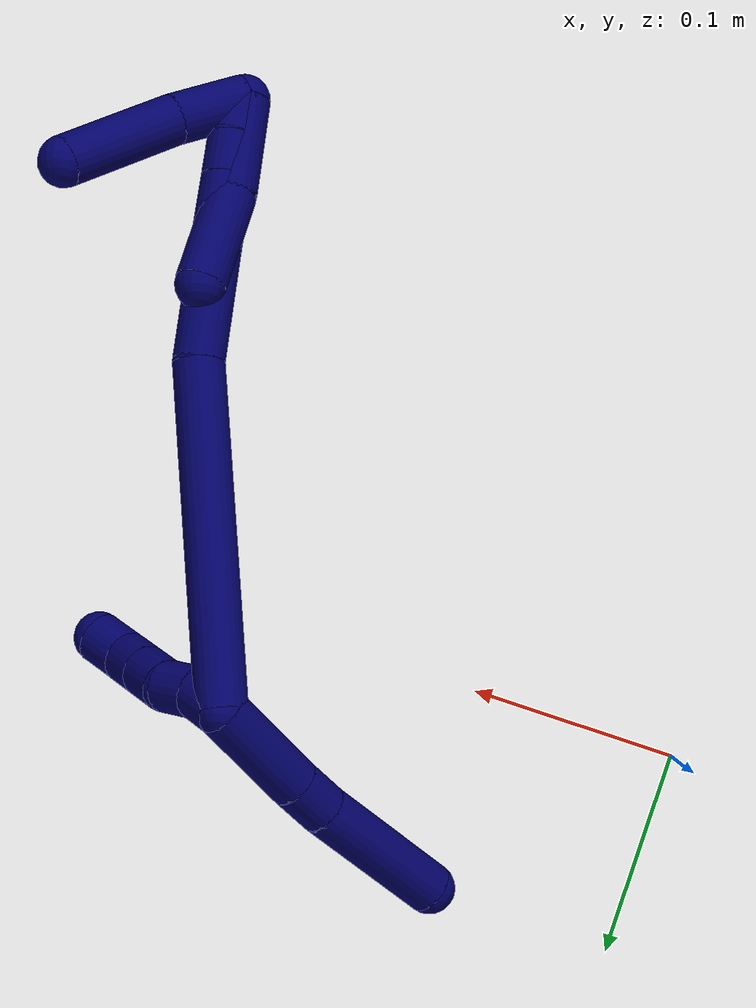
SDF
<sdf version="1.7">
 <world name="default">
  <model name="7">
   <static>0</static>
   <link name="7">
    <collision name="collision-cylinder-e_1_2_8">
     <pose>-0.016369 0.017653 -0.012696 -2.19429 -0.645306 1.15595</pose>
     <geometry><cylinder><radius>0.0125</radius><length>0.054434</length></cylinder></geometry>
     <surface>
      <friction><ode><mu>1.16</mu><mu2>1.16</mu2><slip1>0</slip1><slip2>0</slip2></ode></friction>
      <contact><ode><kp>1e+06</kp><kd>1</kd><max_vel>0</max_vel><min_depth>0.001</min_depth></ode></contact>
     </surface>
    </collision>
    <visual name="visual-cylinder-e_1_2_8">
     <pose>-0.016369 0.017653 -0.012696 -2.19429 -0.645306 1.15595</pose>
     <geometry><cylinder><radius>0.0125</radius><length>0.054434</length></cylinder></geometry>
     <material><ambient>0.003922 0 0.403922 1</ambient></material>
    </visual>
    <collision name="collision-cylinder-e_2_8_9">
     <pose>-0.039183 0.042501 -0.029938 -2.13429 -0.648087 1.09479</pose>
     <geometry><cylinder><radius>0.0125</radius><length>0.021351</length></cylinder></geometry>
     <surface>
      <friction><ode><mu>1.16</mu><mu2>1.16</mu2><slip1>0</slip1><slip2>0</slip2></ode></friction>
      <contact><ode><kp>1e+06</kp><kd>1</kd><max_vel>0</max_vel><min_depth>0.001</min_depth></ode></contact>
     </surface>
    </collision>
    <visual name="visual-cylinder-e_2_8_9">
     <pose>-0.039183 0.042501 -0.029938 -2.13429 -0.648087 1.09479</pose>
     <geometry><cylinder><radius>0.0125</radius><length>0.021351</length></cylinder></geometry>
     <material><ambient>0.003922 0 0.403922 1</ambient></material>
    </visual>
    <collision name="collision-cylinder-e_3_9_6">
     <pose>-0.067166 0.076568 -0.048301 -2.04574 -0.619261 0.965701</pose>
     <geometry><cylinder><radius>0.0125</radius><length>0.074215</length></cylinder></geometry>
     <surface>
      <friction><ode><mu>1.16</mu><mu2>1.16</mu2><slip1>0</slip1><slip2>0</slip2></ode></friction>
      <contact><ode><kp>1e+06</kp><kd>1</kd><max_vel>0</max_vel><min_depth>0.001</min_depth></ode></contact>
     </surface>
    </collision>
    <visual name="visual-cylinder-e_3_9_6">
     <pose>-0.067166 0.076568 -0.048301 -2.04574 -0.619261 0.965701</pose>
     <geometry><cylinder><radius>0.0125</radius><length>0.074215</length></cylinder></geometry>
     <material><ambient>0.003922 0 0.403922 1</ambient></material>
    </visual>
    <collision name="collision-cylinder-e_1_2_10">
     <pose>-0.006025 -0.006128 0.005114 0.875339 -0.646643 -0.311059</pose>
     <geometry><cylinder><radius>0.0125</radius><length>0.02</length></cylinder></geometry>
     <surface>
      <friction><ode><mu>1.16</mu><mu2>1.16</mu2><slip1>0</slip1><slip2>0</slip2></ode></friction>
      <contact><ode><kp>1e+06</kp><kd>1</kd><max_vel>0</max_vel><min_depth>0.001</min_depth></ode></contact>
     </surface>
    </collision>
    <visual name="visual-cylinder-e_1_2_10">
     <pose>-0.006025 -0.006128 0.005114 0.875339 -0.646643 -0.311059</pose>
     <geometry><cylinder><radius>0.0125</radius><length>0.02</length></cylinder></geometry>
     <material><ambient>0.003922 0 0.403922 1</ambient></material>
    </visual>
    <collision name="collision-cylinder-e_2_10_11">
     <pose>-0.018049 -0.019897 0.012599 1.26986 -0.643328 -0.481467</pose>
     <geometry><cylinder><radius>0.0125</radius><length>0.02</length></cylinder></geometry>
     <surface>
      <friction><ode><mu>1.16</mu><mu2>1.16</mu2><slip1>0</slip1><slip2>0</slip2></ode></friction>
      <contact><ode><kp>1e+06</kp><kd>1</kd><max_vel>0</max_vel><min_depth>0.001</min_depth></ode></contact>
     </surface>
    </collision>
    <visual name="visual-cylinder-e_2_10_11">
     <pose>-0.018049 -0.019897 0.012599 1.26986 -0.643328 -0.481467</pose>
     <geometry><cylinder><radius>0.0125</radius><length>0.02</length></cylinder></geometry>
     <material><ambient>0.003922 0 0.403922 1</ambient></material>
    </visual>
    <collision name="collision-cylinder-e_3_11_12">
     <pose>-0.031091 -0.032876 0.01965 0.851017 -0.781515 -0.36913</pose>
     <geometry><cylinder><radius>0.0125</radius><length>0.02</length></cylinder></geometry>
     <surface>
      <friction><ode><mu>1.16</mu><mu2>1.16</mu2><slip1>0</slip1><slip2>0</slip2></ode></friction>
      <contact><ode><kp>1e+06</kp><kd>1</kd><max_vel>0</max_vel><min_depth>0.001</min_depth></ode></contact>
     </surface>
    </collision>
    <visual name="visual-cylinder-e_3_11_12">
     <pose>-0.031091 -0.032876 0.01965 0.851017 -0.781515 -0.36913</pose>
     <geometry><cylinder><radius>0.0125</radius><length>0.02</length></cylinder></geometry>
     <material><ambient>0.003922 0 0.403922 1</ambient></material>
    </visual>
    <collision name="collision-cylinder-e_4_12_13">
     <pose>-0.045185 -0.043546 0.029006 0.850841 -0.782416 -0.369507</pose>
     <geometry><cylinder><radius>0.0125</radius><length>0.02</length></cylinder></geometry>
     <surface>
      <friction><ode><mu>1.16</mu><mu2>1.16</mu2><slip1>0</slip1><slip2>0</slip2></ode></friction>
      <contact><ode><kp>1e+06</kp><kd>1</kd><max_vel>0</max_vel><min_depth>0.001</min_depth></ode></contact>
     </surface>
    </collision>
    <visual name="visual-cylinder-e_4_12_13">
     <pose>-0.045185 -0.043546 0.029006 0.850841 -0.782416 -0.369507</pose>
     <geometry><cylinder><radius>0.0125</radius><length>0.02</length></cylinder></geometry>
     <material><ambient>0.003922 0 0.403922 1</ambient></material>
    </visual>
    <collision name="collision-cylinder-e_5_13_5">
     <pose>-0.056622 -0.05609 0.039043 0.931607 -0.45424 -0.231317</pose>
     <geometry><cylinder><radius>0.0125</radius><length>0.02</length></cylinder></geometry>
     <surface>
      <friction><ode><mu>1.16</mu><mu2>1.16</mu2><slip1>0</slip1><slip2>0</slip2></ode></friction>
      <contact><ode><kp>1e+06</kp><kd>1</kd><max_vel>0</max_vel><min_depth>0.001</min_depth></ode></contact>
     </surface>
    </collision>
    <visual name="visual-cylinder-e_5_13_5">
     <pose>-0.056622 -0.05609 0.039043 0.931607 -0.45424 -0.231317</pose>
     <geometry><cylinder><radius>0.0125</radius><length>0.02</length></cylinder></geometry>
     <material><ambient>0.003922 0 0.403922 1</ambient></material>
    </visual>
    <collision name="collision-cylinder-e_1_2_14">
     <pose>0.004221 -0.011401 0.082156 0.137894 0.050842 0.003512</pose>
     <geometry><cylinder><radius>0.0125</radius><length>0.1661</length></cylinder></geometry>
     <surface>
      <friction><ode><mu>1.16</mu><mu2>1.16</mu2><slip1>0</slip1><slip2>0</slip2></ode></friction>
      <contact><ode><kp>1e+06</kp><kd>1</kd><max_vel>0</max_vel><min_depth>0.001</min_depth></ode></contact>
     </surface>
    </collision>
    <visual name="visual-cylinder-e_1_2_14">
     <pose>0.004221 -0.011401 0.082156 0.137894 0.050842 0.003512</pose>
     <geometry><cylinder><radius>0.0125</radius><length>0.1661</length></cylinder></geometry>
     <material><ambient>0.003922 0 0.403922 1</ambient></material>
    </visual>
    <collision name="collision-cylinder-e_2_14_15">
     <pose>0.009723 -0.020969 0.191777 -0.066662 0.046546 -0.001552</pose>
     <geometry><cylinder><radius>0.0125</radius><length>0.055114</length></cylinder></geometry>
     <surface>
      <friction><ode><mu>1.16</mu><mu2>1.16</mu2><slip1>0</slip1><slip2>0</slip2></ode></friction>
      <contact><ode><kp>1e+06</kp><kd>1</kd><max_vel>0</max_vel><min_depth>0.001</min_depth></ode></contact>
     </surface>
    </collision>
    <visual name="visual-cylinder-e_2_14_15">
     <pose>0.009723 -0.020969 0.191777 -0.066662 0.046546 -0.001552</pose>
     <geometry><cylinder><radius>0.0125</radius><length>0.055114</length></cylinder></geometry>
     <material><ambient>0.003922 0 0.403922 1</ambient></material>
    </visual>
    <collision name="collision-cylinder-e_3_15_16">
     <pose>0.011246 -0.017657 0.237657 -0.080113 0.013022 -0.000522</pose>
     <geometry><cylinder><radius>0.0125</radius><length>0.036949</length></cylinder></geometry>
     <surface>
      <friction><ode><mu>1.16</mu><mu2>1.16</mu2><slip1>0</slip1><slip2>0</slip2></ode></friction>
      <contact><ode><kp>1e+06</kp><kd>1</kd><max_vel>0</max_vel><min_depth>0.001</min_depth></ode></contact>
     </surface>
    </collision>
    <visual name="visual-cylinder-e_3_15_16">
     <pose>0.011246 -0.017657 0.237657 -0.080113 0.013022 -0.000522</pose>
     <geometry><cylinder><radius>0.0125</radius><length>0.036949</length></cylinder></geometry>
     <material><ambient>0.003922 0 0.403922 1</ambient></material>
    </visual>
    <collision name="collision-cylinder-e_4_16_17">
     <pose>0.011633 -0.015386 0.266647 -0.074782 0.013823 -0.000517</pose>
     <geometry><cylinder><radius>0.0125</radius><length>0.021215</length></cylinder></geometry>
     <surface>
      <friction><ode><mu>1.16</mu><mu2>1.16</mu2><slip1>0</slip1><slip2>0</slip2></ode></friction>
      <contact><ode><kp>1e+06</kp><kd>1</kd><max_vel>0</max_vel><min_depth>0.001</min_depth></ode></contact>
     </surface>
    </collision>
    <visual name="visual-cylinder-e_4_16_17">
     <pose>0.011633 -0.015386 0.266647 -0.074782 0.013823 -0.000517</pose>
     <geometry><cylinder><radius>0.0125</radius><length>0.021215</length></cylinder></geometry>
     <material><ambient>0.003922 0 0.403922 1</ambient></material>
    </visual>
    <collision name="collision-cylinder-e_5_17_1">
     <pose>0.011019 -0.012635 0.287319 -0.191589 -0.073858 0.0071</pose>
     <geometry><cylinder><radius>0.0125</radius><length>0.020622</length></cylinder></geometry>
     <surface>
      <friction><ode><mu>1.16</mu><mu2>1.16</mu2><slip1>0</slip1><slip2>0</slip2></ode></friction>
      <contact><ode><kp>1e+06</kp><kd>1</kd><max_vel>0</max_vel><min_depth>0.001</min_depth></ode></contact>
     </surface>
    </collision>
    <visual name="visual-cylinder-e_5_17_1">
     <pose>0.011019 -0.012635 0.287319 -0.191589 -0.073858 0.0071</pose>
     <geometry><cylinder><radius>0.0125</radius><length>0.020622</length></cylinder></geometry>
     <material><ambient>0.003922 0 0.403922 1</ambient></material>
    </visual>
    <collision name="collision-cylinder-e_1_1_18">
     <pose>0.010888 -0.012168 0.272761 3.08118 0.025502 0.798702</pose>
     <geometry><cylinder><radius>0.0125</radius><length>0.04941</length></cylinder></geometry>
     <surface>
      <friction><ode><mu>1.16</mu><mu2>1.16</mu2><slip1>0</slip1><slip2>0</slip2></ode></friction>
      <contact><ode><kp>1e+06</kp><kd>1</kd><max_vel>0</max_vel><min_depth>0.001</min_depth></ode></contact>
     </surface>
    </collision>
    <visual name="visual-cylinder-e_1_1_18">
     <pose>0.010888 -0.012168 0.272761 3.08118 0.025502 0.798702</pose>
     <geometry><cylinder><radius>0.0125</radius><length>0.04941</length></cylinder></geometry>
     <material><ambient>0.003922 0 0.403922 1</ambient></material>
    </visual>
    <collision name="collision-cylinder-e_2_18_4">
     <pose>0.015243 -0.018943 0.223654 2.92879 0.147787 1.21219</pose>
     <geometry><cylinder><radius>0.0125</radius><length>0.05059</length></cylinder></geometry>
     <surface>
      <friction><ode><mu>1.16</mu><mu2>1.16</mu2><slip1>0</slip1><slip2>0</slip2></ode></friction>
      <contact><ode><kp>1e+06</kp><kd>1</kd><max_vel>0</max_vel><min_depth>0.001</min_depth></ode></contact>
     </surface>
    </collision>
    <visual name="visual-cylinder-e_2_18_4">
     <pose>0.015243 -0.018943 0.223654 2.92879 0.147787 1.21219</pose>
     <geometry><cylinder><radius>0.0125</radius><length>0.05059</length></cylinder></geometry>
     <material><ambient>0.003922 0 0.403922 1</ambient></material>
    </visual>
    <collision name="collision-cylinder-e_1_1_19">
     <pose>0.014925 -0.027047 0.28915 2.03824 0.249208 0.401568</pose>
     <geometry><cylinder><radius>0.0125</radius><length>0.037844</length></cylinder></geometry>
     <surface>
      <friction><ode><mu>1.16</mu><mu2>1.16</mu2><slip1>0</slip1><slip2>0</slip2></ode></friction>
      <contact><ode><kp>1e+06</kp><kd>1</kd><max_vel>0</max_vel><min_depth>0.001</min_depth></ode></contact>
     </surface>
    </collision>
    <visual name="visual-cylinder-e_1_1_19">
     <pose>0.014925 -0.027047 0.28915 2.03824 0.249208 0.401568</pose>
     <geometry><cylinder><radius>0.0125</radius><length>0.037844</length></cylinder></geometry>
     <material><ambient>0.003922 0 0.403922 1</ambient></material>
    </visual>
    <collision name="collision-cylinder-e_2_19_3">
     <pose>0.030093 -0.067408 0.264153 2.17989 0.344664 0.644058</pose>
     <geometry><cylinder><radius>0.0125</radius><length>0.062156</length></cylinder></geometry>
     <surface>
      <friction><ode><mu>1.16</mu><mu2>1.16</mu2><slip1>0</slip1><slip2>0</slip2></ode></friction>
      <contact><ode><kp>1e+06</kp><kd>1</kd><max_vel>0</max_vel><min_depth>0.001</min_depth></ode></contact>
     </surface>
    </collision>
    <visual name="visual-cylinder-e_2_19_3">
     <pose>0.030093 -0.067408 0.264153 2.17989 0.344664 0.644058</pose>
     <geometry><cylinder><radius>0.0125</radius><length>0.062156</length></cylinder></geometry>
     <material><ambient>0.003922 0 0.403922 1</ambient></material>
    </visual>
    <collision name="collision-sphere-3">
     <pose>0.040593 -0.091398 0.247418 0 -0 0</pose>
     <geometry><sphere><radius>0.0125</radius></sphere></geometry>
     <surface>
      <friction><ode><mu>1.16</mu><mu2>1.16</mu2><slip1>0</slip1><slip2>0</slip2></ode></friction>
      <contact><ode><kp>1e+06</kp><kd>1</kd><max_vel>0</max_vel><min_depth>0.001</min_depth></ode></contact>
     </surface>
    </collision>
    <visual name="visual-sphere-3">
     <pose>0.040593 -0.091398 0.247418 0 -0 0</pose>
     <geometry><sphere><radius>0.0125</radius></sphere></geometry>
     <material><ambient>0.003922 0 0.403922 1</ambient></material>
    </visual>
    <collision name="collision-sphere-19">
     <pose>0.019592 -0.043418 0.280887 0 -0 0</pose>
     <geometry><sphere><radius>0.0125</radius></sphere></geometry>
     <surface>
      <friction><ode><mu>1.16</mu><mu2>1.16</mu2><slip1>0</slip1><slip2>0</slip2></ode></friction>
      <contact><ode><kp>1e+06</kp><kd>1</kd><max_vel>0</max_vel><min_depth>0.001</min_depth></ode></contact>
     </surface>
    </collision>
    <visual name="visual-sphere-19">
     <pose>0.019592 -0.043418 0.280887 0 -0 0</pose>
     <geometry><sphere><radius>0.0125</radius></sphere></geometry>
     <material><ambient>0.003922 0 0.403922 1</ambient></material>
    </visual>
    <collision name="collision-sphere-11">
     <pose>-0.024047 -0.027538 0.014971 0 -0 0</pose>
     <geometry><sphere><radius>0.0125</radius></sphere></geometry>
     <surface>
      <friction><ode><mu>1.16</mu><mu2>1.16</mu2><slip1>0</slip1><slip2>0</slip2></ode></friction>
      <contact><ode><kp>1e+06</kp><kd>1</kd><max_vel>0</max_vel><min_depth>0.001</min_depth></ode></contact>
     </surface>
    </collision>
    <visual name="visual-sphere-11">
     <pose>-0.024047 -0.027538 0.014971 0 -0 0</pose>
     <geometry><sphere><radius>0.0125</radius></sphere></geometry>
     <material><ambient>0.003922 0 0.403922 1</ambient></material>
    </visual>
    <collision name="collision-sphere-10">
     <pose>-0.01205 -0.012255 0.010228 0 -0 0</pose>
     <geometry><sphere><radius>0.0125</radius></sphere></geometry>
     <surface>
      <friction><ode><mu>1.16</mu><mu2>1.16</mu2><slip1>0</slip1><slip2>0</slip2></ode></friction>
      <contact><ode><kp>1e+06</kp><kd>1</kd><max_vel>0</max_vel><min_depth>0.001</min_depth></ode></contact>
     </surface>
    </collision>
    <visual name="visual-sphere-10">
     <pose>-0.01205 -0.012255 0.010228 0 -0 0</pose>
     <geometry><sphere><radius>0.0125</radius></sphere></geometry>
     <material><ambient>0.003922 0 0.403922 1</ambient></material>
    </visual>
    <collision name="collision-sphere-6">
     <pose>-0.088705 0.103441 -0.062119 0 -0 0</pose>
     <geometry><sphere><radius>0.0125</radius></sphere></geometry>
     <surface>
      <friction><ode><mu>1.16</mu><mu2>1.16</mu2><slip1>0</slip1><slip2>0</slip2></ode></friction>
      <contact><ode><kp>1e+06</kp><kd>1</kd><max_vel>0</max_vel><min_depth>0.001</min_depth></ode></contact>
     </surface>
    </collision>
    <visual name="visual-sphere-6">
     <pose>-0.088705 0.103441 -0.062119 0 -0 0</pose>
     <geometry><sphere><radius>0.0125</radius></sphere></geometry>
     <material><ambient>0.003922 0 0.403922 1</ambient></material>
    </visual>
    <collision name="collision-sphere-9">
     <pose>-0.045628 0.049696 -0.034484 0 -0 0</pose>
     <geometry><sphere><radius>0.0125</radius></sphere></geometry>
     <surface>
      <friction><ode><mu>1.16</mu><mu2>1.16</mu2><slip1>0</slip1><slip2>0</slip2></ode></friction>
      <contact><ode><kp>1e+06</kp><kd>1</kd><max_vel>0</max_vel><min_depth>0.001</min_depth></ode></contact>
     </surface>
    </collision>
    <visual name="visual-sphere-9">
     <pose>-0.045628 0.049696 -0.034484 0 -0 0</pose>
     <geometry><sphere><radius>0.0125</radius></sphere></geometry>
     <material><ambient>0.003922 0 0.403922 1</ambient></material>
    </visual>
    <collision name="collision-sphere-2">
     <geometry><sphere><radius>0.0125</radius></sphere></geometry>
     <surface>
      <friction><ode><mu>1.16</mu><mu2>1.16</mu2><slip1>0</slip1><slip2>0</slip2></ode></friction>
      <contact><ode><kp>1e+06</kp><kd>1</kd><max_vel>0</max_vel><min_depth>0.001</min_depth></ode></contact>
     </surface>
    </collision>
    <visual name="visual-sphere-2">
     <geometry><sphere><radius>0.0125</radius></sphere></geometry>
     <material><ambient>0.003922 0 0.403922 1</ambient></material>
    </visual>
    <collision name="collision-sphere-8">
     <pose>-0.032739 0.035306 -0.025391 0 -0 0</pose>
     <geometry><sphere><radius>0.0125</radius></sphere></geometry>
     <surface>
      <friction><ode><mu>1.16</mu><mu2>1.16</mu2><slip1>0</slip1><slip2>0</slip2></ode></friction>
      <contact><ode><kp>1e+06</kp><kd>1</kd><max_vel>0</max_vel><min_depth>0.001</min_depth></ode></contact>
     </surface>
    </collision>
    <visual name="visual-sphere-8">
     <pose>-0.032739 0.035306 -0.025391 0 -0 0</pose>
     <geometry><sphere><radius>0.0125</radius></sphere></geometry>
     <material><ambient>0.003922 0 0.403922 1</ambient></material>
    </visual>
    <collision name="collision-sphere-12">
     <pose>-0.038135 -0.038214 0.02433 0 -0 0</pose>
     <geometry><sphere><radius>0.0125</radius></sphere></geometry>
     <surface>
      <friction><ode><mu>1.16</mu><mu2>1.16</mu2><slip1>0</slip1><slip2>0</slip2></ode></friction>
      <contact><ode><kp>1e+06</kp><kd>1</kd><max_vel>0</max_vel><min_depth>0.001</min_depth></ode></contact>
     </surface>
    </collision>
    <visual name="visual-sphere-12">
     <pose>-0.038135 -0.038214 0.02433 0 -0 0</pose>
     <geometry><sphere><radius>0.0125</radius></sphere></geometry>
     <material><ambient>0.003922 0 0.403922 1</ambient></material>
    </visual>
    <collision name="collision-sphere-13">
     <pose>-0.052234 -0.048878 0.033682 0 -0 0</pose>
     <geometry><sphere><radius>0.0125</radius></sphere></geometry>
     <surface>
      <friction><ode><mu>1.16</mu><mu2>1.16</mu2><slip1>0</slip1><slip2>0</slip2></ode></friction>
      <contact><ode><kp>1e+06</kp><kd>1</kd><max_vel>0</max_vel><min_depth>0.001</min_depth></ode></contact>
     </surface>
    </collision>
    <visual name="visual-sphere-13">
     <pose>-0.052234 -0.048878 0.033682 0 -0 0</pose>
     <geometry><sphere><radius>0.0125</radius></sphere></geometry>
     <material><ambient>0.003922 0 0.403922 1</ambient></material>
    </visual>
    <collision name="collision-sphere-5">
     <pose>-0.06101 -0.063302 0.044403 0 -0 0</pose>
     <geometry><sphere><radius>0.0125</radius></sphere></geometry>
     <surface>
      <friction><ode><mu>1.16</mu><mu2>1.16</mu2><slip1>0</slip1><slip2>0</slip2></ode></friction>
      <contact><ode><kp>1e+06</kp><kd>1</kd><max_vel>0</max_vel><min_depth>0.001</min_depth></ode></contact>
     </surface>
    </collision>
    <visual name="visual-sphere-5">
     <pose>-0.06101 -0.063302 0.044403 0 -0 0</pose>
     <geometry><sphere><radius>0.0125</radius></sphere></geometry>
     <material><ambient>0.003922 0 0.403922 1</ambient></material>
    </visual>
    <collision name="collision-sphere-14">
     <pose>0.008441 -0.022802 0.164311 0 -0 0</pose>
     <geometry><sphere><radius>0.0125</radius></sphere></geometry>
     <surface>
      <friction><ode><mu>1.16</mu><mu2>1.16</mu2><slip1>0</slip1><slip2>0</slip2></ode></friction>
      <contact><ode><kp>1e+06</kp><kd>1</kd><max_vel>0</max_vel><min_depth>0.001</min_depth></ode></contact>
     </surface>
    </collision>
    <visual name="visual-sphere-14">
     <pose>0.008441 -0.022802 0.164311 0 -0 0</pose>
     <geometry><sphere><radius>0.0125</radius></sphere></geometry>
     <material><ambient>0.003922 0 0.403922 1</ambient></material>
    </visual>
    <collision name="collision-sphere-15">
     <pose>0.011006 -0.019135 0.219243 0 -0 0</pose>
     <geometry><sphere><radius>0.0125</radius></sphere></geometry>
     <surface>
      <friction><ode><mu>1.16</mu><mu2>1.16</mu2><slip1>0</slip1><slip2>0</slip2></ode></friction>
      <contact><ode><kp>1e+06</kp><kd>1</kd><max_vel>0</max_vel><min_depth>0.001</min_depth></ode></contact>
     </surface>
    </collision>
    <visual name="visual-sphere-15">
     <pose>0.011006 -0.019135 0.219243 0 -0 0</pose>
     <geometry><sphere><radius>0.0125</radius></sphere></geometry>
     <material><ambient>0.003922 0 0.403922 1</ambient></material>
    </visual>
    <collision name="collision-sphere-16">
     <pose>0.011487 -0.016178 0.256071 0 -0 0</pose>
     <geometry><sphere><radius>0.0125</radius></sphere></geometry>
     <surface>
      <friction><ode><mu>1.16</mu><mu2>1.16</mu2><slip1>0</slip1><slip2>0</slip2></ode></friction>
      <contact><ode><kp>1e+06</kp><kd>1</kd><max_vel>0</max_vel><min_depth>0.001</min_depth></ode></contact>
     </surface>
    </collision>
    <visual name="visual-sphere-16">
     <pose>0.011487 -0.016178 0.256071 0 -0 0</pose>
     <geometry><sphere><radius>0.0125</radius></sphere></geometry>
     <material><ambient>0.003922 0 0.403922 1</ambient></material>
    </visual>
    <collision name="collision-sphere-17">
     <pose>0.01178 -0.014593 0.277224 0 -0 0</pose>
     <geometry><sphere><radius>0.0125</radius></sphere></geometry>
     <surface>
      <friction><ode><mu>1.16</mu><mu2>1.16</mu2><slip1>0</slip1><slip2>0</slip2></ode></friction>
      <contact><ode><kp>1e+06</kp><kd>1</kd><max_vel>0</max_vel><min_depth>0.001</min_depth></ode></contact>
     </surface>
    </collision>
    <visual name="visual-sphere-17">
     <pose>0.01178 -0.014593 0.277224 0 -0 0</pose>
     <geometry><sphere><radius>0.0125</radius></sphere></geometry>
     <material><ambient>0.003922 0 0.403922 1</ambient></material>
    </visual>
    <collision name="collision-sphere-1">
     <pose>0.010258 -0.010677 0.297413 0 -0 0</pose>
     <geometry><sphere><radius>0.0125</radius></sphere></geometry>
     <surface>
      <friction><ode><mu>1.16</mu><mu2>1.16</mu2><slip1>0</slip1><slip2>0</slip2></ode></friction>
      <contact><ode><kp>1e+06</kp><kd>1</kd><max_vel>0</max_vel><min_depth>0.001</min_depth></ode></contact>
     </surface>
    </collision>
    <visual name="visual-sphere-1">
     <pose>0.010258 -0.010677 0.297413 0 -0 0</pose>
     <geometry><sphere><radius>0.0125</radius></sphere></geometry>
     <material><ambient>0.003922 0 0.403922 1</ambient></material>
    </visual>
    <collision name="collision-sphere-18">
     <pose>0.011518 -0.01366 0.248109 0 -0 0</pose>
     <geometry><sphere><radius>0.0125</radius></sphere></geometry>
     <surface>
      <friction><ode><mu>1.16</mu><mu2>1.16</mu2><slip1>0</slip1><slip2>0</slip2></ode></friction>
      <contact><ode><kp>1e+06</kp><kd>1</kd><max_vel>0</max_vel><min_depth>0.001</min_depth></ode></contact>
     </surface>
    </collision>
    <visual name="visual-sphere-18">
     <pose>0.011518 -0.01366 0.248109 0 -0 0</pose>
     <geometry><sphere><radius>0.0125</radius></sphere></geometry>
     <material><ambient>0.003922 0 0.403922 1</ambient></material>
    </visual>
    <collision name="collision-sphere-4">
     <pose>0.018967 -0.024227 0.1992 0 -0 0</pose>
     <geometry><sphere><radius>0.0125</radius></sphere></geometry>
     <surface>
      <friction><ode><mu>1.16</mu><mu2>1.16</mu2><slip1>0</slip1><slip2>0</slip2></ode></friction>
      <contact><ode><kp>1e+06</kp><kd>1</kd><max_vel>0</max_vel><min_depth>0.001</min_depth></ode></contact>
     </surface>
    </collision>
    <visual name="visual-sphere-4">
     <pose>0.018967 -0.024227 0.1992 0 -0 0</pose>
     <geometry><sphere><radius>0.0125</radius></sphere></geometry>
     <material><ambient>0.003922 0 0.403922 1</ambient></material>
    </visual>
    <inertial>
     <pose>-0.005308 -0.008909 0.125233 0 -0 0</pose>
     <mass>0.75</mass>
     <inertia><ixx>0.00054</ixx><ixy>0</ixy><ixz>0</ixz><iyy>0.000471</iyy><iyz>0</iyz><izz>5.9e-05</izz></inertia>
    </inertial>
   </link>
   <pose>0.212152 0.041891 0.08204 -3.10448 -1.30465 -1.35218</pose>
  </model>
 </world>
</sdf>
